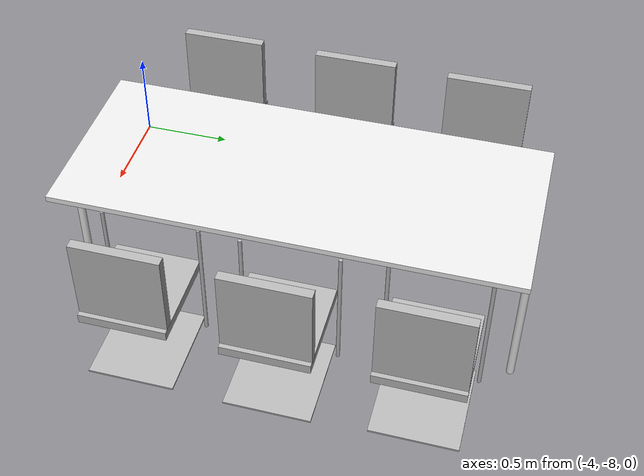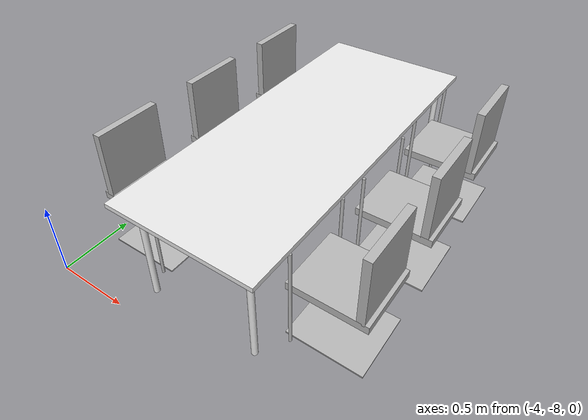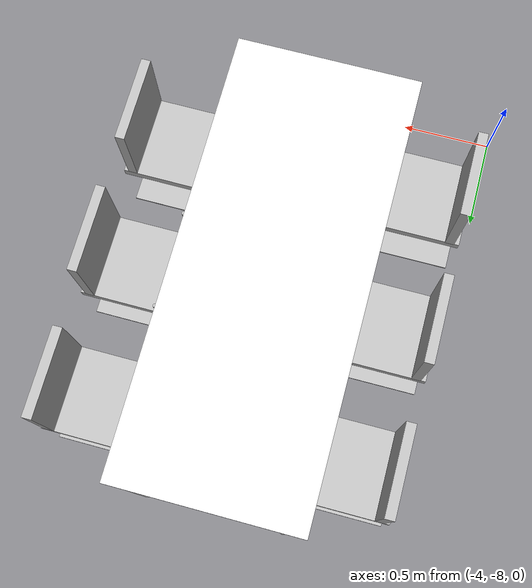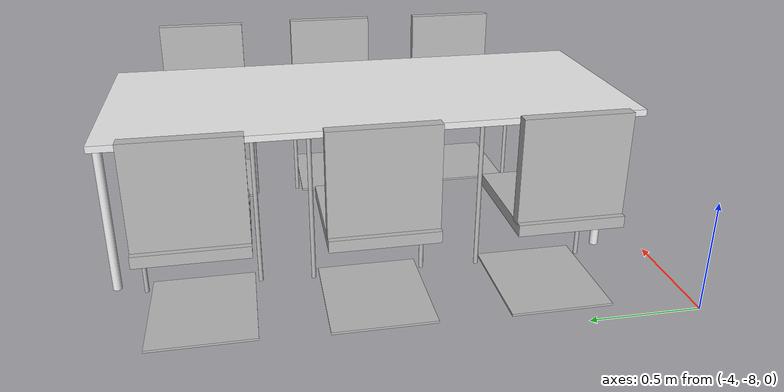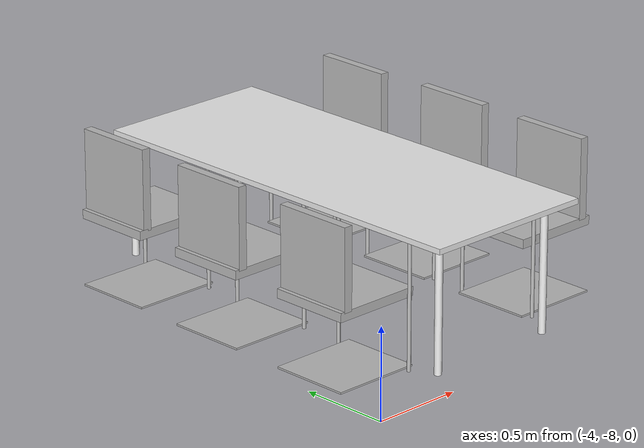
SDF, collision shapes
<sdf version="1.6">
 <model name="erica">
  <model name="table1_chair_tv_clone">
   <model name="h_chair">
    <link name="link_0">
     <inertial>
      <mass>1</mass>
      <inertia>
       <ixx>0.166667</ixx>
       <ixy>0</ixy>
       <ixz>0</ixz>
       <iyy>0.166667</iyy>
       <iyz>0</iyz>
       <izz>0.166667</izz>
      </inertia>
     </inertial>
     <visual name="visual">
      <geometry>
       <mesh><uri>model://erica/elements/h_chair/meshes/chair.dae</uri><scale>1 1 1</scale></mesh>
      </geometry>
     </visual>
     <collision name="collision_4">
      <pose>0 0 0.41 0 -0 0</pose>
      <geometry><box><size>0.5 0.45 0.05</size></box></geometry>
      <surface>
       <friction>
        <ode><mu>1</mu><mu2>1</mu2><fdir1>0 0 0</fdir1><slip1>0</slip1><slip2>0</slip2></ode>
        <torsional>
         <coefficient>1</coefficient>
         <patch_radius>0</patch_radius>
         <surface_radius>0</surface_radius>
         <use_patch_radius>1</use_patch_radius>
         <ode><slip>0</slip></ode>
        </torsional>
       </friction>
       <bounce><restitution_coefficient>0</restitution_coefficient><threshold>1e+06</threshold></bounce>
       <contact>
        <collide_without_contact>0</collide_without_contact>
        <collide_without_contact_bitmask>1</collide_without_contact_bitmask>
        <collide_bitmask>1</collide_bitmask>
        <ode>
         <soft_cfm>0</soft_cfm>
         <soft_erp>0.2</soft_erp>
         <kp>1e+13</kp>
         <kd>1</kd>
         <max_vel>0.01</max_vel>
         <min_depth>0</min_depth>
        </ode>
        <bullet>
         <split_impulse>1</split_impulse>
         <split_impulse_penetration_threshold>-0.01</split_impulse_penetration_threshold>
         <soft_cfm>0</soft_cfm>
         <soft_erp>0.2</soft_erp>
         <kp>1e+13</kp>
         <kd>1</kd>
        </bullet>
       </contact>
      </surface>
     </collision>
     <collision name="collision_3">
      <pose>0 0 0.01 0 -0 0</pose>
      <geometry><box><size>0.5 0.45 0.01</size></box></geometry>
      <surface>
       <friction>
        <ode><mu>1</mu><mu2>1</mu2><fdir1>0 0 0</fdir1><slip1>0</slip1><slip2>0</slip2></ode>
        <torsional>
         <coefficient>1</coefficient>
         <patch_radius>0</patch_radius>
         <surface_radius>0</surface_radius>
         <use_patch_radius>1</use_patch_radius>
         <ode><slip>0</slip></ode>
        </torsional>
       </friction>
       <bounce><restitution_coefficient>0</restitution_coefficient><threshold>1e+06</threshold></bounce>
       <contact>
        <collide_without_contact>0</collide_without_contact>
        <collide_without_contact_bitmask>1</collide_without_contact_bitmask>
        <collide_bitmask>1</collide_bitmask>
        <ode>
         <soft_cfm>0</soft_cfm>
         <soft_erp>0.2</soft_erp>
         <kp>1e+13</kp>
         <kd>1</kd>
         <max_vel>0.01</max_vel>
         <min_depth>0</min_depth>
        </ode>
        <bullet>
         <split_impulse>1</split_impulse>
         <split_impulse_penetration_threshold>-0.01</split_impulse_penetration_threshold>
         <soft_cfm>0</soft_cfm>
         <soft_erp>0.2</soft_erp>
         <kp>1e+13</kp>
         <kd>1</kd>
        </bullet>
       </contact>
      </surface>
     </collision>
     <collision name="collision_5">
      <pose>-0.2 0 0.65 0 -0 0</pose>
      <geometry><box><size>0.05 0.45 0.45</size></box></geometry>
      <surface>
       <friction>
        <ode><mu>1</mu><mu2>1</mu2><fdir1>0 0 0</fdir1><slip1>0</slip1><slip2>0</slip2></ode>
        <torsional>
         <coefficient>1</coefficient>
         <patch_radius>0</patch_radius>
         <surface_radius>0</surface_radius>
         <use_patch_radius>1</use_patch_radius>
         <ode><slip>0</slip></ode>
        </torsional>
       </friction>
       <bounce><restitution_coefficient>0</restitution_coefficient><threshold>1e+06</threshold></bounce>
       <contact>
        <collide_without_contact>0</collide_without_contact>
        <collide_without_contact_bitmask>1</collide_without_contact_bitmask>
        <collide_bitmask>1</collide_bitmask>
        <ode>
         <soft_cfm>0</soft_cfm>
         <soft_erp>0.2</soft_erp>
         <kp>1e+13</kp>
         <kd>1</kd>
         <max_vel>0.01</max_vel>
         <min_depth>0</min_depth>
        </ode>
        <bullet>
         <split_impulse>1</split_impulse>
         <split_impulse_penetration_threshold>-0.01</split_impulse_penetration_threshold>
         <soft_cfm>0</soft_cfm>
         <soft_erp>0.2</soft_erp>
         <kp>1e+13</kp>
         <kd>1</kd>
        </bullet>
       </contact>
      </surface>
     </collision>
     <collision name="collision_6">
      <pose>0.2 -0.25 0.35 0 -0 0</pose>
      <geometry><cylinder><radius>0.01</radius><length>0.7</length></cylinder></geometry>
      <surface>
       <friction>
        <ode><mu>1</mu><mu2>1</mu2><fdir1>0 0 0</fdir1><slip1>0</slip1><slip2>0</slip2></ode>
        <torsional>
         <coefficient>1</coefficient>
         <patch_radius>0</patch_radius>
         <surface_radius>0</surface_radius>
         <use_patch_radius>1</use_patch_radius>
         <ode><slip>0</slip></ode>
        </torsional>
       </friction>
       <bounce><restitution_coefficient>0</restitution_coefficient><threshold>1e+06</threshold></bounce>
       <contact>
        <collide_without_contact>0</collide_without_contact>
        <collide_without_contact_bitmask>1</collide_without_contact_bitmask>
        <collide_bitmask>1</collide_bitmask>
        <ode>
         <soft_cfm>0</soft_cfm>
         <soft_erp>0.2</soft_erp>
         <kp>1e+13</kp>
         <kd>1</kd>
         <max_vel>0.01</max_vel>
         <min_depth>0</min_depth>
        </ode>
        <bullet>
         <split_impulse>1</split_impulse>
         <split_impulse_penetration_threshold>-0.01</split_impulse_penetration_threshold>
         <soft_cfm>0</soft_cfm>
         <soft_erp>0.2</soft_erp>
         <kp>1e+13</kp>
         <kd>1</kd>
        </bullet>
       </contact>
      </surface>
     </collision>
     <collision name="collision_7">
      <pose>0.2 0.25 0.35 0 -0 0</pose>
      <geometry><cylinder><radius>0.01</radius><length>0.7</length></cylinder></geometry>
      <surface>
       <friction>
        <ode><mu>1</mu><mu2>1</mu2><fdir1>0 0 0</fdir1><slip1>0</slip1><slip2>0</slip2></ode>
        <torsional>
         <coefficient>1</coefficient>
         <patch_radius>0</patch_radius>
         <surface_radius>0</surface_radius>
         <use_patch_radius>1</use_patch_radius>
         <ode><slip>0</slip></ode>
        </torsional>
       </friction>
       <bounce><restitution_coefficient>0</restitution_coefficient><threshold>1e+06</threshold></bounce>
       <contact>
        <collide_without_contact>0</collide_without_contact>
        <collide_without_contact_bitmask>1</collide_without_contact_bitmask>
        <collide_bitmask>1</collide_bitmask>
        <ode>
         <soft_cfm>0</soft_cfm>
         <soft_erp>0.2</soft_erp>
         <kp>1e+13</kp>
         <kd>1</kd>
         <max_vel>0.01</max_vel>
         <min_depth>0</min_depth>
        </ode>
        <bullet>
         <split_impulse>1</split_impulse>
         <split_impulse_penetration_threshold>-0.01</split_impulse_penetration_threshold>
         <soft_cfm>0</soft_cfm>
         <soft_erp>0.2</soft_erp>
         <kp>1e+13</kp>
         <kd>1</kd>
        </bullet>
       </contact>
      </surface>
     </collision>
    </link>
    <static>1</static>
    <pose>-0.65015 0.677818 0 0 -0 0</pose>
   </model>
   <model name="h_chair_clone">
    <link name="link_0">
     <inertial>
      <mass>1</mass>
      <inertia>
       <ixx>0.166667</ixx>
       <ixy>0</ixy>
       <ixz>0</ixz>
       <iyy>0.166667</iyy>
       <iyz>0</iyz>
       <izz>0.166667</izz>
      </inertia>
     </inertial>
     <visual name="visual">
      <geometry>
       <mesh><uri>model://erica/elements/h_chair/meshes/chair.dae</uri><scale>1 1 1</scale></mesh>
      </geometry>
     </visual>
     <collision name="collision_4">
      <pose>0 0 0.41 0 -0 0</pose>
      <geometry><box><size>0.5 0.45 0.05</size></box></geometry>
      <surface>
       <friction>
        <ode><mu>1</mu><mu2>1</mu2><fdir1>0 0 0</fdir1><slip1>0</slip1><slip2>0</slip2></ode>
        <torsional>
         <coefficient>1</coefficient>
         <patch_radius>0</patch_radius>
         <surface_radius>0</surface_radius>
         <use_patch_radius>1</use_patch_radius>
         <ode><slip>0</slip></ode>
        </torsional>
       </friction>
       <bounce><restitution_coefficient>0</restitution_coefficient><threshold>1e+06</threshold></bounce>
       <contact>
        <collide_without_contact>0</collide_without_contact>
        <collide_without_contact_bitmask>1</collide_without_contact_bitmask>
        <collide_bitmask>1</collide_bitmask>
        <ode>
         <soft_cfm>0</soft_cfm>
         <soft_erp>0.2</soft_erp>
         <kp>1e+13</kp>
         <kd>1</kd>
         <max_vel>0.01</max_vel>
         <min_depth>0</min_depth>
        </ode>
        <bullet>
         <split_impulse>1</split_impulse>
         <split_impulse_penetration_threshold>-0.01</split_impulse_penetration_threshold>
         <soft_cfm>0</soft_cfm>
         <soft_erp>0.2</soft_erp>
         <kp>1e+13</kp>
         <kd>1</kd>
        </bullet>
       </contact>
      </surface>
     </collision>
     <collision name="collision_3">
      <pose>0 0 0.01 0 -0 0</pose>
      <geometry><box><size>0.5 0.45 0.01</size></box></geometry>
      <surface>
       <friction>
        <ode><mu>1</mu><mu2>1</mu2><fdir1>0 0 0</fdir1><slip1>0</slip1><slip2>0</slip2></ode>
        <torsional>
         <coefficient>1</coefficient>
         <patch_radius>0</patch_radius>
         <surface_radius>0</surface_radius>
         <use_patch_radius>1</use_patch_radius>
         <ode><slip>0</slip></ode>
        </torsional>
       </friction>
       <bounce><restitution_coefficient>0</restitution_coefficient><threshold>1e+06</threshold></bounce>
       <contact>
        <collide_without_contact>0</collide_without_contact>
        <collide_without_contact_bitmask>1</collide_without_contact_bitmask>
        <collide_bitmask>1</collide_bitmask>
        <ode>
         <soft_cfm>0</soft_cfm>
         <soft_erp>0.2</soft_erp>
         <kp>1e+13</kp>
         <kd>1</kd>
         <max_vel>0.01</max_vel>
         <min_depth>0</min_depth>
        </ode>
        <bullet>
         <split_impulse>1</split_impulse>
         <split_impulse_penetration_threshold>-0.01</split_impulse_penetration_threshold>
         <soft_cfm>0</soft_cfm>
         <soft_erp>0.2</soft_erp>
         <kp>1e+13</kp>
         <kd>1</kd>
        </bullet>
       </contact>
      </surface>
     </collision>
     <collision name="collision_5">
      <pose>-0.2 0 0.65 0 -0 0</pose>
      <geometry><box><size>0.05 0.45 0.45</size></box></geometry>
      <surface>
       <friction>
        <ode><mu>1</mu><mu2>1</mu2><fdir1>0 0 0</fdir1><slip1>0</slip1><slip2>0</slip2></ode>
        <torsional>
         <coefficient>1</coefficient>
         <patch_radius>0</patch_radius>
         <surface_radius>0</surface_radius>
         <use_patch_radius>1</use_patch_radius>
         <ode><slip>0</slip></ode>
        </torsional>
       </friction>
       <bounce><restitution_coefficient>0</restitution_coefficient><threshold>1e+06</threshold></bounce>
       <contact>
        <collide_without_contact>0</collide_without_contact>
        <collide_without_contact_bitmask>1</collide_without_contact_bitmask>
        <collide_bitmask>1</collide_bitmask>
        <ode>
         <soft_cfm>0</soft_cfm>
         <soft_erp>0.2</soft_erp>
         <kp>1e+13</kp>
         <kd>1</kd>
         <max_vel>0.01</max_vel>
         <min_depth>0</min_depth>
        </ode>
        <bullet>
         <split_impulse>1</split_impulse>
         <split_impulse_penetration_threshold>-0.01</split_impulse_penetration_threshold>
         <soft_cfm>0</soft_cfm>
         <soft_erp>0.2</soft_erp>
         <kp>1e+13</kp>
         <kd>1</kd>
        </bullet>
       </contact>
      </surface>
     </collision>
     <collision name="collision_6">
      <pose>0.2 -0.25 0.35 0 -0 0</pose>
      <geometry><cylinder><radius>0.01</radius><length>0.7</length></cylinder></geometry>
      <surface>
       <friction>
        <ode><mu>1</mu><mu2>1</mu2><fdir1>0 0 0</fdir1><slip1>0</slip1><slip2>0</slip2></ode>
        <torsional>
         <coefficient>1</coefficient>
         <patch_radius>0</patch_radius>
         <surface_radius>0</surface_radius>
         <use_patch_radius>1</use_patch_radius>
         <ode><slip>0</slip></ode>
        </torsional>
       </friction>
       <bounce><restitution_coefficient>0</restitution_coefficient><threshold>1e+06</threshold></bounce>
       <contact>
        <collide_without_contact>0</collide_without_contact>
        <collide_without_contact_bitmask>1</collide_without_contact_bitmask>
        <collide_bitmask>1</collide_bitmask>
        <ode>
         <soft_cfm>0</soft_cfm>
         <soft_erp>0.2</soft_erp>
         <kp>1e+13</kp>
         <kd>1</kd>
         <max_vel>0.01</max_vel>
         <min_depth>0</min_depth>
        </ode>
        <bullet>
         <split_impulse>1</split_impulse>
         <split_impulse_penetration_threshold>-0.01</split_impulse_penetration_threshold>
         <soft_cfm>0</soft_cfm>
         <soft_erp>0.2</soft_erp>
         <kp>1e+13</kp>
         <kd>1</kd>
        </bullet>
       </contact>
      </surface>
     </collision>
     <collision name="collision_7">
      <pose>0.2 0.25 0.35 0 -0 0</pose>
      <geometry><cylinder><radius>0.01</radius><length>0.7</length></cylinder></geometry>
      <surface>
       <friction>
        <ode><mu>1</mu><mu2>1</mu2><fdir1>0 0 0</fdir1><slip1>0</slip1><slip2>0</slip2></ode>
        <torsional>
         <coefficient>1</coefficient>
         <patch_radius>0</patch_radius>
         <surface_radius>0</surface_radius>
         <use_patch_radius>1</use_patch_radius>
         <ode><slip>0</slip></ode>
        </torsional>
       </friction>
       <bounce><restitution_coefficient>0</restitution_coefficient><threshold>1e+06</threshold></bounce>
       <contact>
        <collide_without_contact>0</collide_without_contact>
        <collide_without_contact_bitmask>1</collide_without_contact_bitmask>
        <collide_bitmask>1</collide_bitmask>
        <ode>
         <soft_cfm>0</soft_cfm>
         <soft_erp>0.2</soft_erp>
         <kp>1e+13</kp>
         <kd>1</kd>
         <max_vel>0.01</max_vel>
         <min_depth>0</min_depth>
        </ode>
        <bullet>
         <split_impulse>1</split_impulse>
         <split_impulse_penetration_threshold>-0.01</split_impulse_penetration_threshold>
         <soft_cfm>0</soft_cfm>
         <soft_erp>0.2</soft_erp>
         <kp>1e+13</kp>
         <kd>1</kd>
        </bullet>
       </contact>
      </surface>
     </collision>
    </link>
    <static>1</static>
    <pose>-0.668032 -0.060178 0 0 -0 0</pose>
   </model>
   <model name="h_chair_clone_0">
    <link name="link_0">
     <inertial>
      <mass>1</mass>
      <inertia>
       <ixx>0.166667</ixx>
       <ixy>0</ixy>
       <ixz>0</ixz>
       <iyy>0.166667</iyy>
       <iyz>0</iyz>
       <izz>0.166667</izz>
      </inertia>
     </inertial>
     <visual name="visual">
      <geometry>
       <mesh><uri>model://erica/elements/h_chair/meshes/chair.dae</uri><scale>1 1 1</scale></mesh>
      </geometry>
     </visual>
     <collision name="collision_4">
      <pose>0 0 0.41 0 -0 0</pose>
      <geometry><box><size>0.5 0.45 0.05</size></box></geometry>
      <surface>
       <friction>
        <ode><mu>1</mu><mu2>1</mu2><fdir1>0 0 0</fdir1><slip1>0</slip1><slip2>0</slip2></ode>
        <torsional>
         <coefficient>1</coefficient>
         <patch_radius>0</patch_radius>
         <surface_radius>0</surface_radius>
         <use_patch_radius>1</use_patch_radius>
         <ode><slip>0</slip></ode>
        </torsional>
       </friction>
       <bounce><restitution_coefficient>0</restitution_coefficient><threshold>1e+06</threshold></bounce>
       <contact>
        <collide_without_contact>0</collide_without_contact>
        <collide_without_contact_bitmask>1</collide_without_contact_bitmask>
        <collide_bitmask>1</collide_bitmask>
        <ode>
         <soft_cfm>0</soft_cfm>
         <soft_erp>0.2</soft_erp>
         <kp>1e+13</kp>
         <kd>1</kd>
         <max_vel>0.01</max_vel>
         <min_depth>0</min_depth>
        </ode>
        <bullet>
         <split_impulse>1</split_impulse>
         <split_impulse_penetration_threshold>-0.01</split_impulse_penetration_threshold>
         <soft_cfm>0</soft_cfm>
         <soft_erp>0.2</soft_erp>
         <kp>1e+13</kp>
         <kd>1</kd>
        </bullet>
       </contact>
      </surface>
     </collision>
     <collision name="collision_3">
      <pose>0 0 0.01 0 -0 0</pose>
      <geometry><box><size>0.5 0.45 0.01</size></box></geometry>
      <surface>
       <friction>
        <ode><mu>1</mu><mu2>1</mu2><fdir1>0 0 0</fdir1><slip1>0</slip1><slip2>0</slip2></ode>
        <torsional>
         <coefficient>1</coefficient>
         <patch_radius>0</patch_radius>
         <surface_radius>0</surface_radius>
         <use_patch_radius>1</use_patch_radius>
         <ode><slip>0</slip></ode>
        </torsional>
       </friction>
       <bounce><restitution_coefficient>0</restitution_coefficient><threshold>1e+06</threshold></bounce>
       <contact>
        <collide_without_contact>0</collide_without_contact>
        <collide_without_contact_bitmask>1</collide_without_contact_bitmask>
        <collide_bitmask>1</collide_bitmask>
        <ode>
         <soft_cfm>0</soft_cfm>
         <soft_erp>0.2</soft_erp>
         <kp>1e+13</kp>
         <kd>1</kd>
         <max_vel>0.01</max_vel>
         <min_depth>0</min_depth>
        </ode>
        <bullet>
         <split_impulse>1</split_impulse>
         <split_impulse_penetration_threshold>-0.01</split_impulse_penetration_threshold>
         <soft_cfm>0</soft_cfm>
         <soft_erp>0.2</soft_erp>
         <kp>1e+13</kp>
         <kd>1</kd>
        </bullet>
       </contact>
      </surface>
     </collision>
     <collision name="collision_5">
      <pose>-0.2 0 0.65 0 -0 0</pose>
      <geometry><box><size>0.05 0.45 0.45</size></box></geometry>
      <surface>
       <friction>
        <ode><mu>1</mu><mu2>1</mu2><fdir1>0 0 0</fdir1><slip1>0</slip1><slip2>0</slip2></ode>
        <torsional>
         <coefficient>1</coefficient>
         <patch_radius>0</patch_radius>
         <surface_radius>0</surface_radius>
         <use_patch_radius>1</use_patch_radius>
         <ode><slip>0</slip></ode>
        </torsional>
       </friction>
       <bounce><restitution_coefficient>0</restitution_coefficient><threshold>1e+06</threshold></bounce>
       <contact>
        <collide_without_contact>0</collide_without_contact>
        <collide_without_contact_bitmask>1</collide_without_contact_bitmask>
        <collide_bitmask>1</collide_bitmask>
        <ode>
         <soft_cfm>0</soft_cfm>
         <soft_erp>0.2</soft_erp>
         <kp>1e+13</kp>
         <kd>1</kd>
         <max_vel>0.01</max_vel>
         <min_depth>0</min_depth>
        </ode>
        <bullet>
         <split_impulse>1</split_impulse>
         <split_impulse_penetration_threshold>-0.01</split_impulse_penetration_threshold>
         <soft_cfm>0</soft_cfm>
         <soft_erp>0.2</soft_erp>
         <kp>1e+13</kp>
         <kd>1</kd>
        </bullet>
       </contact>
      </surface>
     </collision>
     <collision name="collision_6">
      <pose>0.2 -0.25 0.35 0 -0 0</pose>
      <geometry><cylinder><radius>0.01</radius><length>0.7</length></cylinder></geometry>
      <surface>
       <friction>
        <ode><mu>1</mu><mu2>1</mu2><fdir1>0 0 0</fdir1><slip1>0</slip1><slip2>0</slip2></ode>
        <torsional>
         <coefficient>1</coefficient>
         <patch_radius>0</patch_radius>
         <surface_radius>0</surface_radius>
         <use_patch_radius>1</use_patch_radius>
         <ode><slip>0</slip></ode>
        </torsional>
       </friction>
       <bounce><restitution_coefficient>0</restitution_coefficient><threshold>1e+06</threshold></bounce>
       <contact>
        <collide_without_contact>0</collide_without_contact>
        <collide_without_contact_bitmask>1</collide_without_contact_bitmask>
        <collide_bitmask>1</collide_bitmask>
        <ode>
         <soft_cfm>0</soft_cfm>
         <soft_erp>0.2</soft_erp>
         <kp>1e+13</kp>
         <kd>1</kd>
         <max_vel>0.01</max_vel>
         <min_depth>0</min_depth>
        </ode>
        <bullet>
         <split_impulse>1</split_impulse>
         <split_impulse_penetration_threshold>-0.01</split_impulse_penetration_threshold>
         <soft_cfm>0</soft_cfm>
         <soft_erp>0.2</soft_erp>
         <kp>1e+13</kp>
         <kd>1</kd>
        </bullet>
       </contact>
      </surface>
     </collision>
     <collision name="collision_7">
      <pose>0.2 0.25 0.35 0 -0 0</pose>
      <geometry><cylinder><radius>0.01</radius><length>0.7</length></cylinder></geometry>
      <surface>
       <friction>
        <ode><mu>1</mu><mu2>1</mu2><fdir1>0 0 0</fdir1><slip1>0</slip1><slip2>0</slip2></ode>
        <torsional>
         <coefficient>1</coefficient>
         <patch_radius>0</patch_radius>
         <surface_radius>0</surface_radius>
         <use_patch_radius>1</use_patch_radius>
         <ode><slip>0</slip></ode>
        </torsional>
       </friction>
       <bounce><restitution_coefficient>0</restitution_coefficient><threshold>1e+06</threshold></bounce>
       <contact>
        <collide_without_contact>0</collide_without_contact>
        <collide_without_contact_bitmask>1</collide_without_contact_bitmask>
        <collide_bitmask>1</collide_bitmask>
        <ode>
         <soft_cfm>0</soft_cfm>
         <soft_erp>0.2</soft_erp>
         <kp>1e+13</kp>
         <kd>1</kd>
         <max_vel>0.01</max_vel>
         <min_depth>0</min_depth>
        </ode>
        <bullet>
         <split_impulse>1</split_impulse>
         <split_impulse_penetration_threshold>-0.01</split_impulse_penetration_threshold>
         <soft_cfm>0</soft_cfm>
         <soft_erp>0.2</soft_erp>
         <kp>1e+13</kp>
         <kd>1</kd>
        </bullet>
       </contact>
      </surface>
     </collision>
    </link>
    <static>1</static>
    <pose>-0.679941 -0.822301 0 0 -0 0</pose>
   </model>
   <model name="h_chair_clone_1">
    <link name="link_0">
     <inertial>
      <mass>1</mass>
      <inertia>
       <ixx>0.166667</ixx>
       <ixy>0</ixy>
       <ixz>0</ixz>
       <iyy>0.166667</iyy>
       <iyz>0</iyz>
       <izz>0.166667</izz>
      </inertia>
     </inertial>
     <visual name="visual">
      <geometry>
       <mesh><uri>model://erica/elements/h_chair/meshes/chair.dae</uri><scale>1 1 1</scale></mesh>
      </geometry>
     </visual>
     <collision name="collision_4">
      <pose>0 0 0.41 0 -0 0</pose>
      <geometry><box><size>0.5 0.45 0.05</size></box></geometry>
      <surface>
       <friction>
        <ode><mu>1</mu><mu2>1</mu2><fdir1>0 0 0</fdir1><slip1>0</slip1><slip2>0</slip2></ode>
        <torsional>
         <coefficient>1</coefficient>
         <patch_radius>0</patch_radius>
         <surface_radius>0</surface_radius>
         <use_patch_radius>1</use_patch_radius>
         <ode><slip>0</slip></ode>
        </torsional>
       </friction>
       <bounce><restitution_coefficient>0</restitution_coefficient><threshold>1e+06</threshold></bounce>
       <contact>
        <collide_without_contact>0</collide_without_contact>
        <collide_without_contact_bitmask>1</collide_without_contact_bitmask>
        <collide_bitmask>1</collide_bitmask>
        <ode>
         <soft_cfm>0</soft_cfm>
         <soft_erp>0.2</soft_erp>
         <kp>1e+13</kp>
         <kd>1</kd>
         <max_vel>0.01</max_vel>
         <min_depth>0</min_depth>
        </ode>
        <bullet>
         <split_impulse>1</split_impulse>
         <split_impulse_penetration_threshold>-0.01</split_impulse_penetration_threshold>
         <soft_cfm>0</soft_cfm>
         <soft_erp>0.2</soft_erp>
         <kp>1e+13</kp>
         <kd>1</kd>
        </bullet>
       </contact>
      </surface>
     </collision>
     <collision name="collision_3">
      <pose>0 0 0.01 0 -0 0</pose>
      <geometry><box><size>0.5 0.45 0.01</size></box></geometry>
      <surface>
       <friction>
        <ode><mu>1</mu><mu2>1</mu2><fdir1>0 0 0</fdir1><slip1>0</slip1><slip2>0</slip2></ode>
        <torsional>
         <coefficient>1</coefficient>
         <patch_radius>0</patch_radius>
         <surface_radius>0</surface_radius>
         <use_patch_radius>1</use_patch_radius>
         <ode><slip>0</slip></ode>
        </torsional>
       </friction>
       <bounce><restitution_coefficient>0</restitution_coefficient><threshold>1e+06</threshold></bounce>
       <contact>
        <collide_without_contact>0</collide_without_contact>
        <collide_without_contact_bitmask>1</collide_without_contact_bitmask>
        <collide_bitmask>1</collide_bitmask>
        <ode>
         <soft_cfm>0</soft_cfm>
         <soft_erp>0.2</soft_erp>
         <kp>1e+13</kp>
         <kd>1</kd>
         <max_vel>0.01</max_vel>
         <min_depth>0</min_depth>
        </ode>
        <bullet>
         <split_impulse>1</split_impulse>
         <split_impulse_penetration_threshold>-0.01</split_impulse_penetration_threshold>
         <soft_cfm>0</soft_cfm>
         <soft_erp>0.2</soft_erp>
         <kp>1e+13</kp>
         <kd>1</kd>
        </bullet>
       </contact>
      </surface>
     </collision>
     <collision name="collision_5">
      <pose>-0.2 0 0.65 0 -0 0</pose>
      <geometry><box><size>0.05 0.45 0.45</size></box></geometry>
      <surface>
       <friction>
        <ode><mu>1</mu><mu2>1</mu2><fdir1>0 0 0</fdir1><slip1>0</slip1><slip2>0</slip2></ode>
        <torsional>
         <coefficient>1</coefficient>
         <patch_radius>0</patch_radius>
         <surface_radius>0</surface_radius>
         <use_patch_radius>1</use_patch_radius>
         <ode><slip>0</slip></ode>
        </torsional>
       </friction>
       <bounce><restitution_coefficient>0</restitution_coefficient><threshold>1e+06</threshold></bounce>
       <contact>
        <collide_without_contact>0</collide_without_contact>
        <collide_without_contact_bitmask>1</collide_without_contact_bitmask>
        <collide_bitmask>1</collide_bitmask>
        <ode>
         <soft_cfm>0</soft_cfm>
         <soft_erp>0.2</soft_erp>
         <kp>1e+13</kp>
         <kd>1</kd>
         <max_vel>0.01</max_vel>
         <min_depth>0</min_depth>
        </ode>
        <bullet>
         <split_impulse>1</split_impulse>
         <split_impulse_penetration_threshold>-0.01</split_impulse_penetration_threshold>
         <soft_cfm>0</soft_cfm>
         <soft_erp>0.2</soft_erp>
         <kp>1e+13</kp>
         <kd>1</kd>
        </bullet>
       </contact>
      </surface>
     </collision>
     <collision name="collision_6">
      <pose>0.2 -0.25 0.35 0 -0 0</pose>
      <geometry><cylinder><radius>0.01</radius><length>0.7</length></cylinder></geometry>
      <surface>
       <friction>
        <ode><mu>1</mu><mu2>1</mu2><fdir1>0 0 0</fdir1><slip1>0</slip1><slip2>0</slip2></ode>
        <torsional>
         <coefficient>1</coefficient>
         <patch_radius>0</patch_radius>
         <surface_radius>0</surface_radius>
         <use_patch_radius>1</use_patch_radius>
         <ode><slip>0</slip></ode>
        </torsional>
       </friction>
       <bounce><restitution_coefficient>0</restitution_coefficient><threshold>1e+06</threshold></bounce>
       <contact>
        <collide_without_contact>0</collide_without_contact>
        <collide_without_contact_bitmask>1</collide_without_contact_bitmask>
        <collide_bitmask>1</collide_bitmask>
        <ode>
         <soft_cfm>0</soft_cfm>
         <soft_erp>0.2</soft_erp>
         <kp>1e+13</kp>
         <kd>1</kd>
         <max_vel>0.01</max_vel>
         <min_depth>0</min_depth>
        </ode>
        <bullet>
         <split_impulse>1</split_impulse>
         <split_impulse_penetration_threshold>-0.01</split_impulse_penetration_threshold>
         <soft_cfm>0</soft_cfm>
         <soft_erp>0.2</soft_erp>
         <kp>1e+13</kp>
         <kd>1</kd>
        </bullet>
       </contact>
      </surface>
     </collision>
     <collision name="collision_7">
      <pose>0.2 0.25 0.35 0 -0 0</pose>
      <geometry><cylinder><radius>0.01</radius><length>0.7</length></cylinder></geometry>
      <surface>
       <friction>
        <ode><mu>1</mu><mu2>1</mu2><fdir1>0 0 0</fdir1><slip1>0</slip1><slip2>0</slip2></ode>
        <torsional>
         <coefficient>1</coefficient>
         <patch_radius>0</patch_radius>
         <surface_radius>0</surface_radius>
         <use_patch_radius>1</use_patch_radius>
         <ode><slip>0</slip></ode>
        </torsional>
       </friction>
       <bounce><restitution_coefficient>0</restitution_coefficient><threshold>1e+06</threshold></bounce>
       <contact>
        <collide_without_contact>0</collide_without_contact>
        <collide_without_contact_bitmask>1</collide_without_contact_bitmask>
        <collide_bitmask>1</collide_bitmask>
        <ode>
         <soft_cfm>0</soft_cfm>
         <soft_erp>0.2</soft_erp>
         <kp>1e+13</kp>
         <kd>1</kd>
         <max_vel>0.01</max_vel>
         <min_depth>0</min_depth>
        </ode>
        <bullet>
         <split_impulse>1</split_impulse>
         <split_impulse_penetration_threshold>-0.01</split_impulse_penetration_threshold>
         <soft_cfm>0</soft_cfm>
         <soft_erp>0.2</soft_erp>
         <kp>1e+13</kp>
         <kd>1</kd>
        </bullet>
       </contact>
      </surface>
     </collision>
    </link>
    <static>1</static>
    <pose>0.664034 0.665185 0 0 -0 3.13853</pose>
   </model>
   <model name="h_chair_clone_1_clone">
    <link name="link_0">
     <inertial>
      <mass>1</mass>
      <inertia>
       <ixx>0.166667</ixx>
       <ixy>0</ixy>
       <ixz>0</ixz>
       <iyy>0.166667</iyy>
       <iyz>0</iyz>
       <izz>0.166667</izz>
      </inertia>
     </inertial>
     <visual name="visual">
      <geometry>
       <mesh><uri>model://erica/elements/h_chair/meshes/chair.dae</uri><scale>1 1 1</scale></mesh>
      </geometry>
     </visual>
     <collision name="collision_4">
      <pose>0 0 0.41 0 -0 0</pose>
      <geometry><box><size>0.5 0.45 0.05</size></box></geometry>
      <surface>
       <friction>
        <ode><mu>1</mu><mu2>1</mu2><fdir1>0 0 0</fdir1><slip1>0</slip1><slip2>0</slip2></ode>
        <torsional>
         <coefficient>1</coefficient>
         <patch_radius>0</patch_radius>
         <surface_radius>0</surface_radius>
         <use_patch_radius>1</use_patch_radius>
         <ode><slip>0</slip></ode>
        </torsional>
       </friction>
       <bounce><restitution_coefficient>0</restitution_coefficient><threshold>1e+06</threshold></bounce>
       <contact>
        <collide_without_contact>0</collide_without_contact>
        <collide_without_contact_bitmask>1</collide_without_contact_bitmask>
        <collide_bitmask>1</collide_bitmask>
        <ode>
         <soft_cfm>0</soft_cfm>
         <soft_erp>0.2</soft_erp>
         <kp>1e+13</kp>
         <kd>1</kd>
         <max_vel>0.01</max_vel>
         <min_depth>0</min_depth>
        </ode>
        <bullet>
         <split_impulse>1</split_impulse>
         <split_impulse_penetration_threshold>-0.01</split_impulse_penetration_threshold>
         <soft_cfm>0</soft_cfm>
         <soft_erp>0.2</soft_erp>
         <kp>1e+13</kp>
         <kd>1</kd>
        </bullet>
       </contact>
      </surface>
     </collision>
     <collision name="collision_3">
      <pose>0 0 0.01 0 -0 0</pose>
      <geometry><box><size>0.5 0.45 0.01</size></box></geometry>
      <surface>
       <friction>
        <ode><mu>1</mu><mu2>1</mu2><fdir1>0 0 0</fdir1><slip1>0</slip1><slip2>0</slip2></ode>
        <torsional>
         <coefficient>1</coefficient>
         <patch_radius>0</patch_radius>
         <surface_radius>0</surface_radius>
         <use_patch_radius>1</use_patch_radius>
         <ode><slip>0</slip></ode>
        </torsional>
       </friction>
       <bounce><restitution_coefficient>0</restitution_coefficient><threshold>1e+06</threshold></bounce>
       <contact>
        <collide_without_contact>0</collide_without_contact>
        <collide_without_contact_bitmask>1</collide_without_contact_bitmask>
        <collide_bitmask>1</collide_bitmask>
        <ode>
         <soft_cfm>0</soft_cfm>
         <soft_erp>0.2</soft_erp>
         <kp>1e+13</kp>
         <kd>1</kd>
         <max_vel>0.01</max_vel>
         <min_depth>0</min_depth>
        </ode>
        <bullet>
         <split_impulse>1</split_impulse>
         <split_impulse_penetration_threshold>-0.01</split_impulse_penetration_threshold>
         <soft_cfm>0</soft_cfm>
         <soft_erp>0.2</soft_erp>
         <kp>1e+13</kp>
         <kd>1</kd>
        </bullet>
       </contact>
      </surface>
     </collision>
     <collision name="collision_5">
      <pose>-0.2 0 0.65 0 -0 0</pose>
      <geometry><box><size>0.05 0.45 0.45</size></box></geometry>
      <surface>
       <friction>
        <ode><mu>1</mu><mu2>1</mu2><fdir1>0 0 0</fdir1><slip1>0</slip1><slip2>0</slip2></ode>
        <torsional>
         <coefficient>1</coefficient>
         <patch_radius>0</patch_radius>
         <surface_radius>0</surface_radius>
         <use_patch_radius>1</use_patch_radius>
         <ode><slip>0</slip></ode>
        </torsional>
       </friction>
       <bounce><restitution_coefficient>0</restitution_coefficient><threshold>1e+06</threshold></bounce>
       <contact>
        <collide_without_contact>0</collide_without_contact>
        <collide_without_contact_bitmask>1</collide_without_contact_bitmask>
        <collide_bitmask>1</collide_bitmask>
        <ode>
         <soft_cfm>0</soft_cfm>
         <soft_erp>0.2</soft_erp>
         <kp>1e+13</kp>
         <kd>1</kd>
         <max_vel>0.01</max_vel>
         <min_depth>0</min_depth>
        </ode>
        <bullet>
         <split_impulse>1</split_impulse>
         <split_impulse_penetration_threshold>-0.01</split_impulse_penetration_threshold>
         <soft_cfm>0</soft_cfm>
         <soft_erp>0.2</soft_erp>
         <kp>1e+13</kp>
         <kd>1</kd>
        </bullet>
       </contact>
      </surface>
     </collision>
     <collision name="collision_6">
      <pose>0.2 -0.25 0.35 0 -0 0</pose>
      <geometry><cylinder><radius>0.01</radius><length>0.7</length></cylinder></geometry>
      <surface>
       <friction>
        <ode><mu>1</mu><mu2>1</mu2><fdir1>0 0 0</fdir1><slip1>0</slip1><slip2>0</slip2></ode>
        <torsional>
         <coefficient>1</coefficient>
         <patch_radius>0</patch_radius>
         <surface_radius>0</surface_radius>
         <use_patch_radius>1</use_patch_radius>
         <ode><slip>0</slip></ode>
        </torsional>
       </friction>
       <bounce><restitution_coefficient>0</restitution_coefficient><threshold>1e+06</threshold></bounce>
       <contact>
        <collide_without_contact>0</collide_without_contact>
        <collide_without_contact_bitmask>1</collide_without_contact_bitmask>
        <collide_bitmask>1</collide_bitmask>
        <ode>
         <soft_cfm>0</soft_cfm>
         <soft_erp>0.2</soft_erp>
         <kp>1e+13</kp>
         <kd>1</kd>
         <max_vel>0.01</max_vel>
         <min_depth>0</min_depth>
        </ode>
        <bullet>
         <split_impulse>1</split_impulse>
         <split_impulse_penetration_threshold>-0.01</split_impulse_penetration_threshold>
         <soft_cfm>0</soft_cfm>
         <soft_erp>0.2</soft_erp>
         <kp>1e+13</kp>
         <kd>1</kd>
        </bullet>
       </contact>
      </surface>
     </collision>
     <collision name="collision_7">
      <pose>0.2 0.25 0.35 0 -0 0</pose>
      <geometry><cylinder><radius>0.01</radius><length>0.7</length></cylinder></geometry>
      <surface>
       <friction>
        <ode><mu>1</mu><mu2>1</mu2><fdir1>0 0 0</fdir1><slip1>0</slip1><slip2>0</slip2></ode>
        <torsional>
         <coefficient>1</coefficient>
         <patch_radius>0</patch_radius>
         <surface_radius>0</surface_radius>
         <use_patch_radius>1</use_patch_radius>
         <ode><slip>0</slip></ode>
        </torsional>
       </friction>
       <bounce><restitution_coefficient>0</restitution_coefficient><threshold>1e+06</threshold></bounce>
       <contact>
        <collide_without_contact>0</collide_without_contact>
        <collide_without_contact_bitmask>1</collide_without_contact_bitmask>
        <collide_bitmask>1</collide_bitmask>
        <ode>
         <soft_cfm>0</soft_cfm>
         <soft_erp>0.2</soft_erp>
         <kp>1e+13</kp>
         <kd>1</kd>
         <max_vel>0.01</max_vel>
         <min_depth>0</min_depth>
        </ode>
        <bullet>
         <split_impulse>1</split_impulse>
         <split_impulse_penetration_threshold>-0.01</split_impulse_penetration_threshold>
         <soft_cfm>0</soft_cfm>
         <soft_erp>0.2</soft_erp>
         <kp>1e+13</kp>
         <kd>1</kd>
        </bullet>
       </contact>
      </surface>
     </collision>
    </link>
    <static>1</static>
    <pose>0.671484 -0.777358 0 0 -0 3.13853</pose>
   </model>
   <model name="h_chair_clone_1_clone_clone">
    <link name="link_0">
     <inertial>
      <mass>1</mass>
      <inertia>
       <ixx>0.166667</ixx>
       <ixy>0</ixy>
       <ixz>0</ixz>
       <iyy>0.166667</iyy>
       <iyz>0</iyz>
       <izz>0.166667</izz>
      </inertia>
     </inertial>
     <visual name="visual">
      <geometry>
       <mesh><uri>model://erica/elements/h_chair/meshes/chair.dae</uri><scale>1 1 1</scale></mesh>
      </geometry>
     </visual>
     <collision name="collision_4">
      <pose>0 0 0.41 0 -0 0</pose>
      <geometry><box><size>0.5 0.45 0.05</size></box></geometry>
      <surface>
       <friction>
        <ode><mu>1</mu><mu2>1</mu2><fdir1>0 0 0</fdir1><slip1>0</slip1><slip2>0</slip2></ode>
        <torsional>
         <coefficient>1</coefficient>
         <patch_radius>0</patch_radius>
         <surface_radius>0</surface_radius>
         <use_patch_radius>1</use_patch_radius>
         <ode><slip>0</slip></ode>
        </torsional>
       </friction>
       <bounce><restitution_coefficient>0</restitution_coefficient><threshold>1e+06</threshold></bounce>
       <contact>
        <collide_without_contact>0</collide_without_contact>
        <collide_without_contact_bitmask>1</collide_without_contact_bitmask>
        <collide_bitmask>1</collide_bitmask>
        <ode>
         <soft_cfm>0</soft_cfm>
         <soft_erp>0.2</soft_erp>
         <kp>1e+13</kp>
         <kd>1</kd>
         <max_vel>0.01</max_vel>
         <min_depth>0</min_depth>
        </ode>
        <bullet>
         <split_impulse>1</split_impulse>
         <split_impulse_penetration_threshold>-0.01</split_impulse_penetration_threshold>
         <soft_cfm>0</soft_cfm>
         <soft_erp>0.2</soft_erp>
         <kp>1e+13</kp>
         <kd>1</kd>
        </bullet>
       </contact>
      </surface>
     </collision>
     <collision name="collision_3">
      <pose>0 0 0.01 0 -0 0</pose>
      <geometry><box><size>0.5 0.45 0.01</size></box></geometry>
      <surface>
       <friction>
        <ode><mu>1</mu><mu2>1</mu2><fdir1>0 0 0</fdir1><slip1>0</slip1><slip2>0</slip2></ode>
        <torsional>
         <coefficient>1</coefficient>
         <patch_radius>0</patch_radius>
         <surface_radius>0</surface_radius>
         <use_patch_radius>1</use_patch_radius>
         <ode><slip>0</slip></ode>
        </torsional>
       </friction>
       <bounce><restitution_coefficient>0</restitution_coefficient><threshold>1e+06</threshold></bounce>
       <contact>
        <collide_without_contact>0</collide_without_contact>
        <collide_without_contact_bitmask>1</collide_without_contact_bitmask>
        <collide_bitmask>1</collide_bitmask>
        <ode>
         <soft_cfm>0</soft_cfm>
         <soft_erp>0.2</soft_erp>
         <kp>1e+13</kp>
         <kd>1</kd>
         <max_vel>0.01</max_vel>
         <min_depth>0</min_depth>
        </ode>
        <bullet>
         <split_impulse>1</split_impulse>
         <split_impulse_penetration_threshold>-0.01</split_impulse_penetration_threshold>
         <soft_cfm>0</soft_cfm>
         <soft_erp>0.2</soft_erp>
         <kp>1e+13</kp>
         <kd>1</kd>
        </bullet>
       </contact>
      </surface>
     </collision>
     <collision name="collision_5">
      <pose>-0.2 0 0.65 0 -0 0</pose>
      <geometry><box><size>0.05 0.45 0.45</size></box></geometry>
      <surface>
       <friction>
        <ode><mu>1</mu><mu2>1</mu2><fdir1>0 0 0</fdir1><slip1>0</slip1><slip2>0</slip2></ode>
        <torsional>
         <coefficient>1</coefficient>
         <patch_radius>0</patch_radius>
         <surface_radius>0</surface_radius>
         <use_patch_radius>1</use_patch_radius>
         <ode><slip>0</slip></ode>
        </torsional>
       </friction>
       <bounce><restitution_coefficient>0</restitution_coefficient><threshold>1e+06</threshold></bounce>
       <contact>
        <collide_without_contact>0</collide_without_contact>
        <collide_without_contact_bitmask>1</collide_without_contact_bitmask>
        <collide_bitmask>1</collide_bitmask>
        <ode>
         <soft_cfm>0</soft_cfm>
         <soft_erp>0.2</soft_erp>
         <kp>1e+13</kp>
         <kd>1</kd>
         <max_vel>0.01</max_vel>
         <min_depth>0</min_depth>
        </ode>
        <bullet>
         <split_impulse>1</split_impulse>
         <split_impulse_penetration_threshold>-0.01</split_impulse_penetration_threshold>
         <soft_cfm>0</soft_cfm>
         <soft_erp>0.2</soft_erp>
         <kp>1e+13</kp>
         <kd>1</kd>
        </bullet>
       </contact>
      </surface>
     </collision>
     <collision name="collision_6">
      <pose>0.2 -0.25 0.35 0 -0 0</pose>
      <geometry><cylinder><radius>0.01</radius><length>0.7</length></cylinder></geometry>
      <surface>
       <friction>
        <ode><mu>1</mu><mu2>1</mu2><fdir1>0 0 0</fdir1><slip1>0</slip1><slip2>0</slip2></ode>
        <torsional>
         <coefficient>1</coefficient>
         <patch_radius>0</patch_radius>
         <surface_radius>0</surface_radius>
         <use_patch_radius>1</use_patch_radius>
         <ode><slip>0</slip></ode>
        </torsional>
       </friction>
       <bounce><restitution_coefficient>0</restitution_coefficient><threshold>1e+06</threshold></bounce>
       <contact>
        <collide_without_contact>0</collide_without_contact>
        <collide_without_contact_bitmask>1</collide_without_contact_bitmask>
        <collide_bitmask>1</collide_bitmask>
        <ode>
         <soft_cfm>0</soft_cfm>
         <soft_erp>0.2</soft_erp>
         <kp>1e+13</kp>
         <kd>1</kd>
         <max_vel>0.01</max_vel>
         <min_depth>0</min_depth>
        </ode>
        <bullet>
         <split_impulse>1</split_impulse>
         <split_impulse_penetration_threshold>-0.01</split_impulse_penetration_threshold>
         <soft_cfm>0</soft_cfm>
         <soft_erp>0.2</soft_erp>
         <kp>1e+13</kp>
         <kd>1</kd>
        </bullet>
       </contact>
      </surface>
     </collision>
     <collision name="collision_7">
      <pose>0.2 0.25 0.35 0 -0 0</pose>
      <geometry><cylinder><radius>0.01</radius><length>0.7</length></cylinder></geometry>
      <surface>
       <friction>
        <ode><mu>1</mu><mu2>1</mu2><fdir1>0 0 0</fdir1><slip1>0</slip1><slip2>0</slip2></ode>
        <torsional>
         <coefficient>1</coefficient>
         <patch_radius>0</patch_radius>
         <surface_radius>0</surface_radius>
         <use_patch_radius>1</use_patch_radius>
         <ode><slip>0</slip></ode>
        </torsional>
       </friction>
       <bounce><restitution_coefficient>0</restitution_coefficient><threshold>1e+06</threshold></bounce>
       <contact>
        <collide_without_contact>0</collide_without_contact>
        <collide_without_contact_bitmask>1</collide_without_contact_bitmask>
        <collide_bitmask>1</collide_bitmask>
        <ode>
         <soft_cfm>0</soft_cfm>
         <soft_erp>0.2</soft_erp>
         <kp>1e+13</kp>
         <kd>1</kd>
         <max_vel>0.01</max_vel>
         <min_depth>0</min_depth>
        </ode>
        <bullet>
         <split_impulse>1</split_impulse>
         <split_impulse_penetration_threshold>-0.01</split_impulse_penetration_threshold>
         <soft_cfm>0</soft_cfm>
         <soft_erp>0.2</soft_erp>
         <kp>1e+13</kp>
         <kd>1</kd>
        </bullet>
       </contact>
      </surface>
     </collision>
    </link>
    <static>1</static>
    <pose>0.685434 -0.0617 0 0 -0 3.13853</pose>
   </model>
   <model name="h_table">
    <link name="link">
     <inertial>
      <inertia><ixx>1</ixx><ixy>0</ixy><ixz>0</ixz><iyy>1</iyy><iyz>0</iyz><izz>1</izz></inertia>
      <mass>1</mass>
     </inertial>
     <visual name="visual1">
      <pose>-0.5 0 0.72 0 -0 0</pose>
      <geometry><box><size>2.4 1 0.04</size></box></geometry>
      <material>
       <script><uri>file://media/materials/scripts/gazebo.material</uri><name>Gazebo/White</name></script>
       <ambient>1 1 1 1</ambient>
       <diffuse>1 1 1 1</diffuse>
       <specular>0.2 0.2 0.2 1</specular>
       <emissive>0 0 0 1</emissive>
       <shader type="vertex"><normal_map>__default__</normal_map></shader>
      </material>
     </visual>
     <visual name="front_right_leg">
      <pose>0.68 -0.38 0.36 0 -0 0</pose>
      <geometry><cylinder><radius>0.02</radius><length>0.72</length></cylinder></geometry>
      <material>
       <script><uri>file://media/materials/scripts/gazebo.material</uri><name>Gazebo/White</name></script>
       <ambient>0.3 0.3 0.3 1</ambient>
       <diffuse>0.7 0.7 0.7 1</diffuse>
       <specular>0.01 0.01 0.01 1</specular>
       <emissive>0 0 0 1</emissive>
       <shader type="vertex"><normal_map>__default__</normal_map></shader>
      </material>
     </visual>
     <visual name="back_left_leg">
      <pose>-1.58 0.38 0.36 0 -0 0</pose>
      <geometry><cylinder><radius>0.02</radius><length>0.72</length></cylinder></geometry>
      <material>
       <script><uri>file://media/materials/scripts/gazebo.material</uri><name>Gazebo/White</name></script>
       <ambient>0.3 0.3 0.3 1</ambient>
       <diffuse>0.7 0.7 0.7 1</diffuse>
       <specular>0.01 0.01 0.01 1</specular>
       <emissive>0 0 0 1</emissive>
       <shader type="vertex"><normal_map>__default__</normal_map></shader>
      </material>
     </visual>
     <visual name="back_right_leg">
      <pose>-1.58 -0.38 0.36 0 -0 0</pose>
      <geometry><cylinder><radius>0.02</radius><length>0.72</length></cylinder></geometry>
      <material>
       <script><uri>file://media/materials/scripts/gazebo.material</uri><name>Gazebo/White</name></script>
       <ambient>0.3 0.3 0.3 1</ambient>
       <diffuse>0.7 0.7 0.7 1</diffuse>
       <specular>0.01 0.01 0.01 1</specular>
       <emissive>0 0 0 1</emissive>
       <shader type="vertex"><normal_map>__default__</normal_map></shader>
      </material>
     </visual>
     <visual name="front_left_leg">
      <pose>0.68 0.38 0.36 0 -0 0</pose>
      <geometry><cylinder><radius>0.02</radius><length>0.72</length></cylinder></geometry>
      <material>
       <script><uri>file://media/materials/scripts/gazebo.material</uri><name>Gazebo/White</name></script>
       <ambient>0.3 0.3 0.3 1</ambient>
       <diffuse>0.7 0.7 0.7 1</diffuse>
       <specular>0.01 0.01 0.01 1</specular>
       <emissive>0 0 0 1</emissive>
       <shader type="vertex"><normal_map>__default__</normal_map></shader>
      </material>
     </visual>
     <collision name="back_right_leg">
      <pose>-1.58 -0.38 0.36 0 -0 0</pose>
      <geometry><cylinder><radius>0.02</radius><length>0.72</length></cylinder></geometry>
      <surface>
       <friction>
        <ode><mu>1</mu><mu2>1</mu2><fdir1>0 0 0</fdir1><slip1>0</slip1><slip2>0</slip2></ode>
        <torsional>
         <coefficient>1</coefficient>
         <patch_radius>0</patch_radius>
         <surface_radius>0</surface_radius>
         <use_patch_radius>1</use_patch_radius>
         <ode><slip>0</slip></ode>
        </torsional>
       </friction>
       <bounce><restitution_coefficient>0</restitution_coefficient><threshold>1e+06</threshold></bounce>
       <contact>
        <collide_without_contact>0</collide_without_contact>
        <collide_without_contact_bitmask>1</collide_without_contact_bitmask>
        <collide_bitmask>1</collide_bitmask>
        <ode>
         <soft_cfm>0</soft_cfm>
         <soft_erp>0.2</soft_erp>
         <kp>1e+13</kp>
         <kd>1</kd>
         <max_vel>0.01</max_vel>
         <min_depth>0</min_depth>
        </ode>
        <bullet>
         <split_impulse>1</split_impulse>
         <split_impulse_penetration_threshold>-0.01</split_impulse_penetration_threshold>
         <soft_cfm>0</soft_cfm>
         <soft_erp>0.2</soft_erp>
         <kp>1e+13</kp>
         <kd>1</kd>
        </bullet>
       </contact>
      </surface>
     </collision>
     <collision name="surface">
      <pose>-0.5 0 0.72 0 -0 0</pose>
      <geometry><box><size>2.4 1 0.03</size></box></geometry>
      <surface>
       <friction>
        <ode><mu>0.6</mu><mu2>0.6</mu2><fdir1>0 0 0</fdir1><slip1>0</slip1><slip2>0</slip2></ode>
        <torsional>
         <coefficient>1</coefficient>
         <patch_radius>0</patch_radius>
         <surface_radius>0</surface_radius>
         <use_patch_radius>1</use_patch_radius>
         <ode><slip>0</slip></ode>
        </torsional>
       </friction>
       <bounce><restitution_coefficient>0</restitution_coefficient><threshold>1e+06</threshold></bounce>
       <contact>
        <collide_without_contact>0</collide_without_contact>
        <collide_without_contact_bitmask>1</collide_without_contact_bitmask>
        <collide_bitmask>1</collide_bitmask>
        <ode>
         <soft_cfm>0</soft_cfm>
         <soft_erp>0.2</soft_erp>
         <kp>1e+13</kp>
         <kd>1</kd>
         <max_vel>0.01</max_vel>
         <min_depth>0</min_depth>
        </ode>
        <bullet>
         <split_impulse>1</split_impulse>
         <split_impulse_penetration_threshold>-0.01</split_impulse_penetration_threshold>
         <soft_cfm>0</soft_cfm>
         <soft_erp>0.2</soft_erp>
         <kp>1e+13</kp>
         <kd>1</kd>
        </bullet>
       </contact>
      </surface>
     </collision>
     <collision name="back_left_leg">
      <pose>-1.58 0.38 0.36 0 -0 0</pose>
      <geometry><cylinder><radius>0.02</radius><length>0.72</length></cylinder></geometry>
      <surface>
       <friction>
        <ode><mu>1</mu><mu2>1</mu2><fdir1>0 0 0</fdir1><slip1>0</slip1><slip2>0</slip2></ode>
        <torsional>
         <coefficient>1</coefficient>
         <patch_radius>0</patch_radius>
         <surface_radius>0</surface_radius>
         <use_patch_radius>1</use_patch_radius>
         <ode><slip>0</slip></ode>
        </torsional>
       </friction>
       <bounce><restitution_coefficient>0</restitution_coefficient><threshold>1e+06</threshold></bounce>
       <contact>
        <collide_without_contact>0</collide_without_contact>
        <collide_without_contact_bitmask>1</collide_without_contact_bitmask>
        <collide_bitmask>1</collide_bitmask>
        <ode>
         <soft_cfm>0</soft_cfm>
         <soft_erp>0.2</soft_erp>
         <kp>1e+13</kp>
         <kd>1</kd>
         <max_vel>0.01</max_vel>
         <min_depth>0</min_depth>
        </ode>
        <bullet>
         <split_impulse>1</split_impulse>
         <split_impulse_penetration_threshold>-0.01</split_impulse_penetration_threshold>
         <soft_cfm>0</soft_cfm>
         <soft_erp>0.2</soft_erp>
         <kp>1e+13</kp>
         <kd>1</kd>
        </bullet>
       </contact>
      </surface>
     </collision>
     <collision name="front_right_leg">
      <pose>0.68 -0.38 0.36 0 -0 0</pose>
      <geometry><cylinder><radius>0.02</radius><length>0.72</length></cylinder></geometry>
      <surface>
       <friction>
        <ode><mu>1</mu><mu2>1</mu2><fdir1>0 0 0</fdir1><slip1>0</slip1><slip2>0</slip2></ode>
        <torsional>
         <coefficient>1</coefficient>
         <patch_radius>0</patch_radius>
         <surface_radius>0</surface_radius>
         <use_patch_radius>1</use_patch_radius>
         <ode><slip>0</slip></ode>
        </torsional>
       </friction>
       <bounce><restitution_coefficient>0</restitution_coefficient><threshold>1e+06</threshold></bounce>
       <contact>
        <collide_without_contact>0</collide_without_contact>
        <collide_without_contact_bitmask>1</collide_without_contact_bitmask>
        <collide_bitmask>1</collide_bitmask>
        <ode>
         <soft_cfm>0</soft_cfm>
         <soft_erp>0.2</soft_erp>
         <kp>1e+13</kp>
         <kd>1</kd>
         <max_vel>0.01</max_vel>
         <min_depth>0</min_depth>
        </ode>
        <bullet>
         <split_impulse>1</split_impulse>
         <split_impulse_penetration_threshold>-0.01</split_impulse_penetration_threshold>
         <soft_cfm>0</soft_cfm>
         <soft_erp>0.2</soft_erp>
         <kp>1e+13</kp>
         <kd>1</kd>
        </bullet>
       </contact>
      </surface>
     </collision>
     <collision name="front_left_leg">
      <pose>0.68 0.38 0.36 0 -0 0</pose>
      <geometry><cylinder><radius>0.02</radius><length>0.72</length></cylinder></geometry>
      <surface>
       <friction>
        <ode><mu>1</mu><mu2>1</mu2><fdir1>0 0 0</fdir1><slip1>0</slip1><slip2>0</slip2></ode>
        <torsional>
         <coefficient>1</coefficient>
         <patch_radius>0</patch_radius>
         <surface_radius>0</surface_radius>
         <use_patch_radius>1</use_patch_radius>
         <ode><slip>0</slip></ode>
        </torsional>
       </friction>
       <bounce><restitution_coefficient>0</restitution_coefficient><threshold>1e+06</threshold></bounce>
       <contact>
        <collide_without_contact>0</collide_without_contact>
        <collide_without_contact_bitmask>1</collide_without_contact_bitmask>
        <collide_bitmask>1</collide_bitmask>
        <ode>
         <soft_cfm>0</soft_cfm>
         <soft_erp>0.2</soft_erp>
         <kp>1e+13</kp>
         <kd>1</kd>
         <max_vel>0.01</max_vel>
         <min_depth>0</min_depth>
        </ode>
        <bullet>
         <split_impulse>1</split_impulse>
         <split_impulse_penetration_threshold>-0.01</split_impulse_penetration_threshold>
         <soft_cfm>0</soft_cfm>
         <soft_erp>0.2</soft_erp>
         <kp>1e+13</kp>
         <kd>1</kd>
        </bullet>
       </contact>
      </surface>
     </collision>
    </link>
    <static>1</static>
    <pose>-0.022829 0.378538 0 0 -0 1.56934</pose>
   </model>
   <model name="tv">
    <link name="link_1">
     <inertial>
      <mass>1</mass>
      <inertia>
       <ixx>0.166667</ixx>
       <ixy>0</ixy>
       <ixz>0</ixz>
       <iyy>0.166667</iyy>
       <iyz>0</iyz>
       <izz>0.166667</izz>
      </inertia>
     </inertial>
     <visual name="visual">
      <geometry>
       <mesh><uri>model://erica/elements/tv/meshes/model.dae</uri><scale>2.5 2.5 2.5</scale></mesh>
      </geometry>
      <material>
       <lighting>1</lighting>
       <script><uri>file://media/materials/scripts/gazebo.material</uri><name>Gazebo/Grey</name></script>
       <ambient>0.3 0.3 0.3 1</ambient>
       <diffuse>0.7 0.7 0.7 1</diffuse>
       <specular>0.01 0.01 0.01 1</specular>
       <emissive>0 0 0 1</emissive>
       <shader type="vertex"><normal_map>__default__</normal_map></shader>
      </material>
     </visual>
    </link>
    <static>1</static>
    <pose>1.67679 -1.029 0.68918 0 0 -1.57931</pose>
   </model>
   <static>1</static>
   <pose>-2.98841 -6.59354 0 0 -0 0</pose>
  </model>
  <static>1</static>
 </model>
</sdf>
